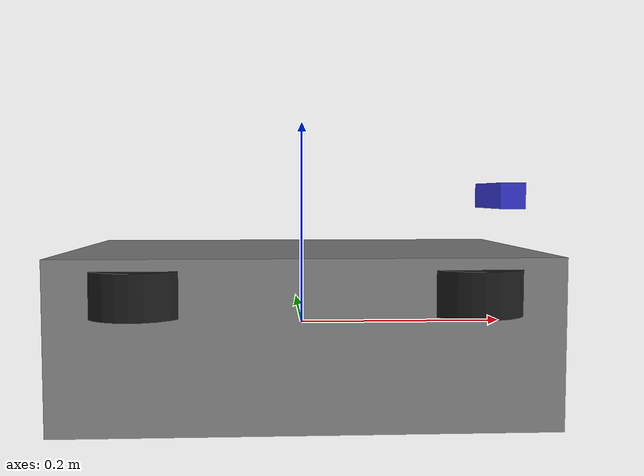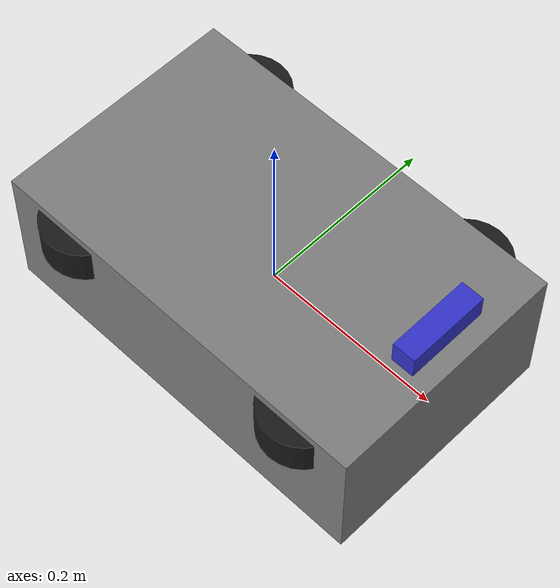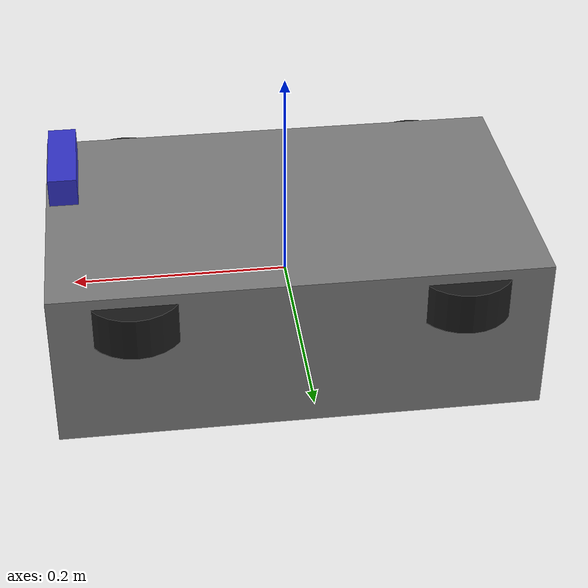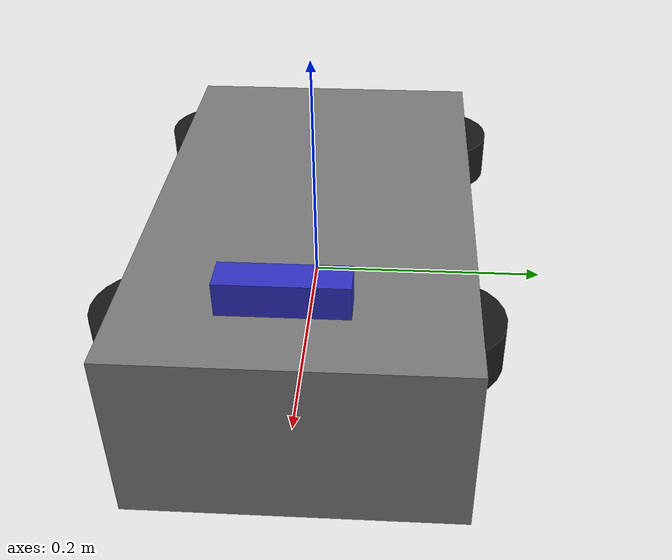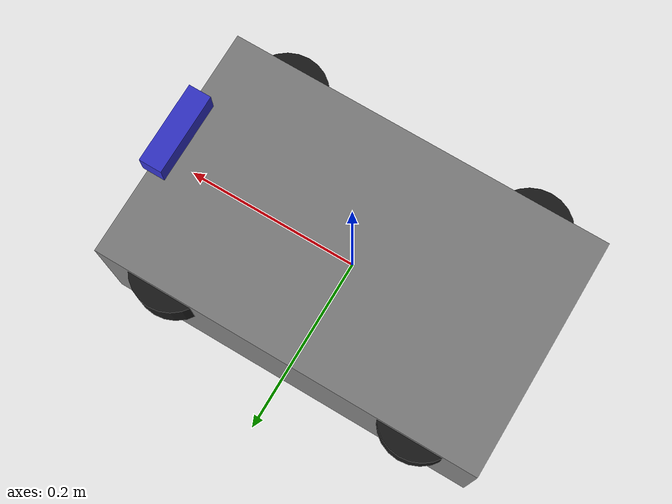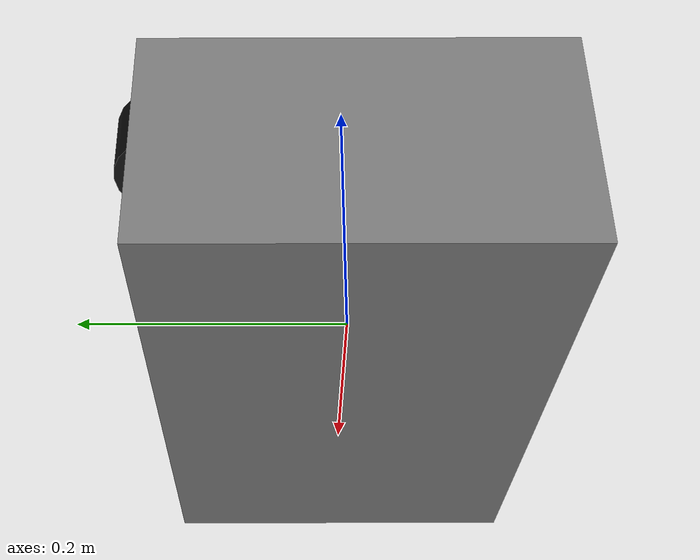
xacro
<?xml version="1.0"?>
<robot xmlns:xacro="http://www.ros.org/wiki/xacro" name="rc_car">

  <!-- Dummy root link to handle KDL inertia requirement -->
  <link name="base_footprint"/>

  <joint name="base_footprint_joint" type="fixed">
    <parent link="base_footprint"/>
    <child link="base_link"/>
    <origin xyz="0 0 0" rpy="0 0 0"/>
  </joint>

  <!-- Chassis: AMORIL 1/10 RC Car -->
  <link name="base_link">
    <inertial>
      <origin xyz="0 0 0.075"/>
      <mass value="3.0"/>
      <inertia ixx="0.08" ixy="0.0" ixz="0.0" iyy="0.25" iyz="0.0" izz="0.28"/>
    </inertial>
    <visual>
      <geometry>
        <box size="0.44 0.27 0.15"/>
      </geometry>
      <material name="gray">
        <color rgba="0.5 0.5 0.5 1"/>
      </material>
    </visual>
    <collision>
      <geometry>
        <box size="0.44 0.27 0.15"/>
      </geometry>
    </collision>
  </link>
  <!-- Wheel links -->
  <link name="front_left_wheel">
    <visual>
      <geometry>
        <cylinder length="0.04" radius="0.045"/>
      </geometry>
      <material name="black"><color rgba="0.1 0.1 0.1 1"/></material>
    </visual>
    <collision>
      <geometry>
        <cylinder length="0.04" radius="0.045"/>
      </geometry>
    </collision>
  </link>
  <link name="front_right_wheel">
    <visual>
      <geometry>
        <cylinder length="0.04" radius="0.045"/>
      </geometry>
      <material name="black"/>
    </visual>
    <collision>
      <geometry>
        <cylinder length="0.04" radius="0.045"/>
      </geometry>
    </collision>
  </link>
  <link name="rear_left_wheel">
    <visual>
      <geometry>
        <cylinder length="0.04" radius="0.045"/>
      </geometry>
      <material name="black"/>
    </visual>
    <collision>
      <geometry>
        <cylinder length="0.04" radius="0.045"/>
      </geometry>
    </collision>
  </link>
  <link name="rear_right_wheel">
    <visual>
      <geometry>
        <cylinder length="0.04" radius="0.045"/>
      </geometry>
      <material name="black"/>
    </visual>
    <collision>
      <geometry>
        <cylinder length="0.04" radius="0.045"/>
      </geometry>
    </collision>
  </link>
  <!-- Wheel joints (front: steerable, rear: fixed) -->
  <!-- Wheelbase: 0.29m, track width: 0.22m -->
  <joint name="front_left_wheel_joint" type="continuous">
    <parent link="steering_link"/>
    <child link="front_left_wheel"/>
    <origin xyz="0.145 0.11 0.045" rpy="0 0 0"/>
    <axis xyz="0 1 0"/>
  </joint>
  <joint name="front_right_wheel_joint" type="continuous">
    <parent link="steering_link"/>
    <child link="front_right_wheel"/>
    <origin xyz="0.145 -0.11 0.045" rpy="0 0 0"/>
    <axis xyz="0 1 0"/>
  </joint>
  <joint name="rear_left_wheel_joint" type="continuous">
    <parent link="traction_link"/>
    <child link="rear_left_wheel"/>
    <origin xyz="-0.145 0.11 0.045" rpy="0 0 0"/>
    <axis xyz="0 1 0"/>
  </joint>
  <joint name="rear_right_wheel_joint" type="continuous">
    <parent link="traction_link"/>
    <child link="rear_right_wheel"/>
    <origin xyz="-0.145 -0.11 0.045" rpy="0 0 0"/>
    <axis xyz="0 1 0"/>
  </joint>

  <link name="steering_link"/>
  <link name="traction_link"/>

  <link name="camera_link">
    <visual>
      <geometry><box size="0.025 0.09 0.025"/></geometry>
      <material name="blue"><color rgba="0.2 0.2 0.8 1"/></material>
    </visual>
  </link>

  <joint name="steering_joint" type="revolute">
    <parent link="base_link"/>
    <child link="steering_link"/>
    <origin xyz="0 0 0" rpy="0 0 0"/>
    <axis xyz="0 0 1"/>
    <limit lower="-1.57" upper="1.57" effort="1" velocity="1"/>
  </joint>

  <joint name="traction_joint" type="continuous">
    <parent link="base_link"/>
    <child link="traction_link"/>
    <origin xyz="0 0 0" rpy="0 0 0"/>
    <axis xyz="0 0 1"/>
  </joint>

  <joint name="camera_joint" type="fixed">
    <parent link="base_link"/>
    <child link="camera_link"/>
    <origin xyz="0.20 0 0.127" rpy="3.14159 0 0"/>
  </joint>

  <link name="camera_infra1_optical_frame"/>
  <joint name="camera_infra1_joint" type="fixed">
    <parent link="camera_link"/>
    <child link="camera_infra1_optical_frame"/>
    <origin xyz="0 0 0" rpy="-1.5708 0 -1.5708"/>
  </joint>

  <link name="camera_infra2_optical_frame"/>
  <joint name="camera_infra2_joint" type="fixed">
    <parent link="camera_link"/>
    <child link="camera_infra2_optical_frame"/>
    <origin xyz="0 -0.050 0" rpy="-1.5708 0 -1.5708"/>
  </joint>

  <link name="camera_imu_optical_frame"/>
  <joint name="camera_imu_joint" type="fixed">
    <parent link="camera_infra1_optical_frame"/>
    <child link="camera_imu_optical_frame"/>
    <origin xyz="-0.005 0 0.005" rpy="0 0 0"/>
  </joint>

  <link name="camera_gyro_optical_frame"/>
  <joint name="camera_gyro_joint" type="fixed">
    <parent link="camera_infra1_optical_frame"/>
    <child link="camera_gyro_optical_frame"/>
    <origin xyz="0 0 0" rpy="0 0 0"/>
  </joint>

  <link name="camera_accel_optical_frame"/>
  <joint name="camera_accel_joint" type="fixed">
    <parent link="camera_infra1_optical_frame"/>
    <child link="camera_accel_optical_frame"/>
    <origin xyz="0 0 0" rpy="0 0 0"/>
  </joint>

    <!-- Add camera_depth_optical_frame -->
    <link name="camera_depth_optical_frame"/>
    <joint name="camera_depth_joint" type="fixed">
      <parent link="camera_link"/>
      <child link="camera_depth_optical_frame"/>
      <!-- Standard RealSense orientation: optical frame (Z forward, X right, Y down) -->
      <origin xyz="0 0 0" rpy="-1.5708 0 -1.5708"/>
    </joint>

  <ros2_control name="JetsonOrinPCA9685" type="system">
    <hardware>
      <plugin>pca9685_hardware_interface/Pca9685SystemHardware</plugin>
      <param name="device">/dev/i2c-7</param>
      <param name="address">64</param>
      <param name="frequency">50</param>
    </hardware>
    <joint name="steering_joint">
      <command_interface name="position" />
      <state_interface name="position" />
      <param name="channel">0</param>
      <param name="offset">0.0</param>
      <param name="min_angle">-0.785</param>
      <param name="max_angle">0.785</param>
      <param name="min_pulse_us">1000</param>
      <param name="neutral_pulse_us">1500</param>
      <param name="max_pulse_us">2000</param>
    </joint>
    <joint name="traction_joint">
      <command_interface name="velocity" />
      <state_interface name="velocity" />
      <state_interface name="position" />
      <param name="channel">1</param>
      <param name="min_pulse_us">1000</param>
      <param name="neutral_pulse_us">1500</param>
      <param name="max_pulse_us">2000</param>
    </joint>
  </ros2_control>
</robot>
